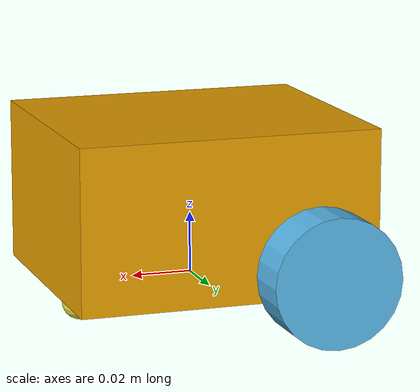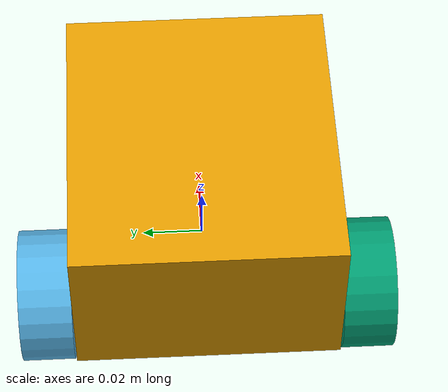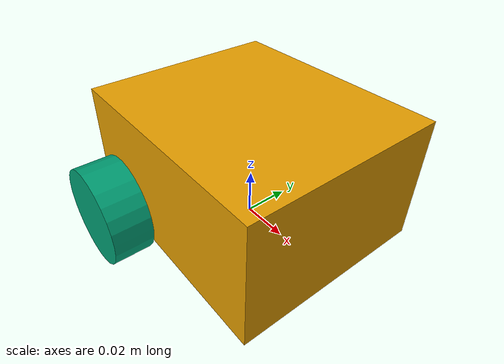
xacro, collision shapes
<?xml version="1.0"?>
<robot name="my_robot" xmlns:xacro="http://www.ros.org/wiki/xacro">

  <!-- ================= PROPERTIES ================= -->
  <xacro:property name="x_l" value="-0.029"/>
  <xacro:property name="y_l" value="0.052"/>
  <xacro:property name="z_l" value="0.008"/>

  <xacro:property name="x_r" value="-0.029"/>
  <xacro:property name="y_r" value="-0.052"/>
  <xacro:property name="z_r" value="0.008"/>

  <xacro:property name="x_c" value="0.038"/>
  <xacro:property name="y_c" value="0.00"/>
  <xacro:property name="z_c" value="0.00"/>

  <xacro:property name="x_imu" value="0.033"/>
  <xacro:property name="y_imu" value="0.0"/>
  <xacro:property name="z_imu" value="0.024"/>

  <!-- UPDATED PARAMETERS -->
  <xacro:property name="mu_drive" value="1.0"/>
  <xacro:property name="mu_drive_lateral" value="1.3"/>
  <xacro:property name="mu_caster" value="0.01"/>
  <xacro:property name="caster_slip1" value="0.15"/>
  <xacro:property name="caster_slip2" value="0.15"/>
  <xacro:property name="wheel_damping" value="1.5"/>

  <xacro:property name="wheel_left_slip1" value="0.005"/>
  <xacro:property name="wheel_left_slip2" value="0.005"/>
  <xacro:property name="wheel_right_slip1" value="0.005"/>
  <xacro:property name="wheel_right_slip2" value="0.005"/>

  <!-- ================= BASE ================= -->
  <link name="base_link">

    <inertial>
      <mass value="2.0"/>
      <origin xyz="-0.015 0 0" rpy="0 0 0"/>
      <inertia ixx="0.01" iyy="0.015" izz="0.02"
               ixy="0" ixz="0" iyz="0"/>
    </inertial>

    <visual>
      <origin xyz="0 0 0" rpy="0 0 1.5708"/>
      <geometry>
        <mesh filename="package://my_robot/description/meshes/body.dae" scale="1.0 1.0 1.0"/>
      </geometry>
    </visual>

    <collision>
      <origin xyz="0 0 0.026" rpy="0 0 0"/>
      <geometry>
        <box size="0.099 0.086 0.05379345"/>
      </geometry>
    </collision>

  </link>

  <!-- ================= LEFT WHEEL ================= -->
  <link name="left_wheel">

    <inertial>
      <mass value="0.2"/>
      <origin xyz="0 0 0" rpy="0 0 0"/>
      <!-- IMPROVED INERTIA -->
      <inertia ixx="0.0002" iyy="0.0001" izz="0.0002"
               ixy="0" ixz="0" iyz="0"/>
    </inertial>

    <visual>
      <origin xyz="0 0 0" rpy="0 0 1.5708"/>
      <geometry>
        <mesh filename="package://my_robot/description/meshes/roda2.dae" scale="1.0 1.0 1.0"/>
      </geometry>
    </visual>

    <collision>
      <origin xyz="0 0 0" rpy="1.5708 0 0"/>
      <geometry>
        <cylinder radius="0.02131869" length="0.017"/>
      </geometry>
      <surface>
        <friction>
          <ode>
            <mu>${mu_drive}</mu>
            <mu2>${mu_drive_lateral}</mu2>
            <slip1>${wheel_left_slip1}</slip1>
            <slip2>${wheel_left_slip2}</slip2>
            <fdir1>1 0 0</fdir1>
          </ode>
        </friction>
      </surface>
    </collision>

  </link>

  <joint name="left_wheel_joint" type="continuous">
    <parent link="base_link"/>
    <child link="left_wheel"/>
    <origin xyz="${x_l} ${y_l} ${z_l}" rpy="0 0 0"/>
    <axis xyz="0 1 0"/>
    <dynamics damping="${wheel_damping}" friction="0.0"/>
  </joint>

  <!-- ================= RIGHT WHEEL ================= -->
  <link name="right_wheel">

    <inertial>
      <mass value="0.2"/>
      <origin xyz="0 0 0" rpy="0 0 0"/>
      <!-- IMPROVED INERTIA -->
      <inertia ixx="0.0002" iyy="0.0001" izz="0.0002"
               ixy="0" ixz="0" iyz="0"/>
    </inertial>

    <visual>
      <origin xyz="0 0 0" rpy="0 0 1.5708"/>
      <geometry>
        <mesh filename="package://my_robot/description/meshes/roda1.dae" scale="1.0 1.0 1.0"/>
      </geometry>
    </visual>

    <collision>
      <origin xyz="0 0 0" rpy="1.5708 0 0"/>
      <geometry>
        <cylinder radius="0.02131869" length="0.017"/>
      </geometry>
      <surface>
        <friction>
          <ode>
            <mu>${mu_drive}</mu>
            <mu2>${mu_drive_lateral}</mu2>
            <slip1>${wheel_right_slip1}</slip1>
            <slip2>${wheel_right_slip2}</slip2>
            <fdir1>1 0 0</fdir1>
          </ode>
        </friction>
      </surface>
    </collision>

  </link>

  <joint name="right_wheel_joint" type="continuous">
    <parent link="base_link"/>
    <child link="right_wheel"/>
    <origin xyz="${x_r} ${y_r} ${z_r}" rpy="0 0 0"/>
    <axis xyz="0 1 0"/>
    <dynamics damping="${wheel_damping}" friction="0.0"/>
  </joint>

  <!-- ================= CASTER ================= -->
  <link name="caster_wheel">

    <inertial>
      <mass value="0.02"/>
      <origin xyz="0 0 0" rpy="0 0 0"/>
      <inertia ixx="0.000002" iyy="0.000002" izz="0.000002"
               ixy="0" ixz="0" iyz="0"/>
    </inertial>

    <visual>
      <origin xyz="0 0 0" rpy="0 0 0"/>
      <geometry>
        <mesh filename="package://my_robot/description/meshes/freewheel.dae" scale="1.0 1.0 1.0"/>
      </geometry>
    </visual>

    <collision>
      <origin xyz="0 0 -0.007" rpy="0 0 0"/>
      <geometry>
        <sphere radius="0.006"/>
      </geometry>
      <surface>
        <friction>
          <ode>
            <mu>${mu_caster}</mu>
            <mu2>${mu_caster}</mu2>
            <slip1>${caster_slip1}</slip1>
            <slip2>${caster_slip2}</slip2>
          </ode>
        </friction>
      </surface>
    </collision>

  </link>

  <joint name="caster_joint" type="fixed">
    <parent link="base_link"/>
    <child link="caster_wheel"/>
    <origin xyz="${x_c} ${y_c} ${z_c}" rpy="0 0 0"/>
  </joint>

  <!-- ================= IMU ================= -->
  <link name="imu_link">
    <inertial>
      <mass value="0.01"/>
      <origin xyz="0 0 0" rpy="0 0 0"/>
      <inertia ixx="0.000001" iyy="0.000001" izz="0.000001"
               ixy="0" ixz="0" iyz="0"/>
    </inertial>
  </link>

  <joint name="imu_joint" type="fixed">
    <parent link="base_link"/>
    <child link="imu_link"/>
    <origin xyz="${x_imu} ${y_imu} ${z_imu}" rpy="0 0 0"/>
  </joint>

  <gazebo reference="imu_link">
    <sensor name="imu_sensor" type="imu">
      <always_on>true</always_on>
      <update_rate>100</update_rate>
      <topic>/imu</topic>
      <imu>
        <angular_velocity>
          <x>
            <noise type="gaussian">
              <mean>0.0</mean>
              <stddev>0.0002</stddev>
            </noise>
          </x>
          <y>
            <noise type="gaussian">
              <mean>0.0</mean>
              <stddev>0.0002</stddev>
            </noise>
          </y>
          <z>
            <noise type="gaussian">
              <mean>0.0</mean>
              <stddev>0.0002</stddev>
            </noise>
          </z>
        </angular_velocity>
        <linear_acceleration>
          <x>
            <noise type="gaussian">
              <mean>0.0</mean>
              <stddev>0.017</stddev>
            </noise>
          </x>
          <y>
            <noise type="gaussian">
              <mean>0.0</mean>
              <stddev>0.017</stddev>
            </noise>
          </y>
          <z>
            <noise type="gaussian">
              <mean>0.0</mean>
              <stddev>0.017</stddev>
            </noise>
          </z>
        </linear_acceleration>
      </imu>
    </sensor>
  </gazebo>

  <gazebo>
    <plugin filename="gz-sim-diff-drive-system" name="gz::sim::systems::DiffDrive">
      <left_joint>left_wheel_joint</left_joint>
      <right_joint>right_wheel_joint</right_joint>
      <wheel_separation>0.104</wheel_separation>
      <wheel_radius>0.02131869</wheel_radius>
      <max_linear_velocity>1.0</max_linear_velocity>
      <max_angular_velocity>2.0</max_angular_velocity>
      <linear_acceleration_limit>1.0</linear_acceleration_limit>
      <angular_acceleration_limit>2.0</angular_acceleration_limit>
      <topic>/cmd_vel</topic>
      <odom_topic>/odom</odom_topic>
      <tf_topic>/tf</tf_topic>
      <frame_id>odom</frame_id>
      <child_frame_id>base_link</child_frame_id>
      <publish_wheel_tf>false</publish_wheel_tf>
      <publish_odom_tf>true</publish_odom_tf>
    </plugin>

  <plugin filename="gz-sim-linearbatteryplugin-system"
    name="gz::sim::systems::LinearBatteryPlugin">
    <!--Li-ion battery spec from LIR18650 datasheet-->
    <battery_name>linear_battery</battery_name>
    <voltage>4.2</voltage>
    <open_circuit_voltage_constant_coef>4.2</open_circuit_voltage_constant_coef>
    <open_circuit_voltage_linear_coef>-2.0</open_circuit_voltage_linear_coef>
    <initial_charge>2.5</initial_charge>
    <capacity>2.5 </capacity>
    <resistance>0.07</resistance>
    <smooth_current_tau>2.0</smooth_current_tau>
    <enable_recharge>false</enable_recharge>
    <charging_time>3.0</charging_time>
    <soc_threshold>0.51</soc_threshold>
    <!-- Consumer-specific -->
    <power_load>2.1</power_load>
    <start_on_motion>true</start_on_motion>
  </plugin>
  </gazebo>

</robot>
